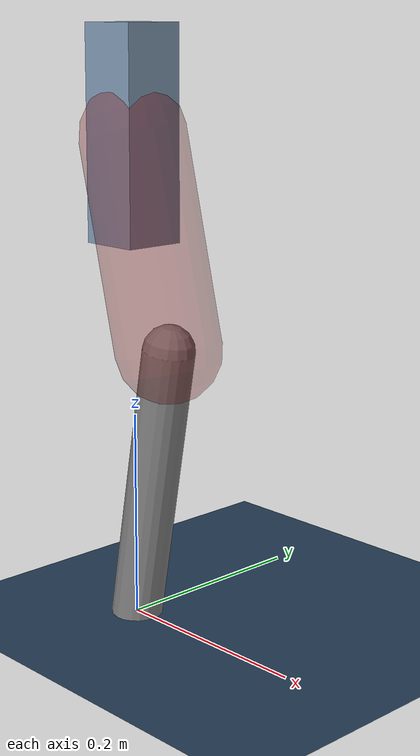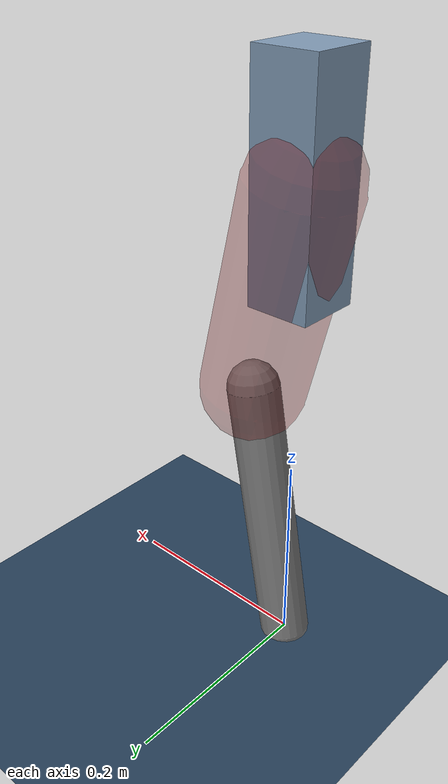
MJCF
<mujoco model="Hopper2D">
	<compiler inertiafromgeom="true" angle="radian" />
	<option timestep="0.001" integrator="implicit" cone="elliptic" solver="Newton" tolerance="1e-10" />

	<default>
		<geom contype="1" conaffinity="1" condim="3" friction="2 0.005 0.0001" solref="0.005 1" />
		<joint limited="true" damping="0.1" />
	</default>

	<asset>
		<texture name="skybox" type="skybox" builtin="gradient" rgb1=".4 .6 .8" rgb2="0 0 0" width="800" height="800" />
		<texture name="grid" type="2d" builtin="checker" rgb1=".1 .2 .3" rgb2=".2 .3 .4" width="300" height="300" mark="edge" markrgb=".2 .3 .4" />
		<material name="ground" texture="grid" texrepeat="1 1" texuniform="true" reflectance="0.1" />
		<material name="leg" rgba="0.5 0.6 0.7 1" />
	</asset>

	<worldbody>

		<geom name="floor" type="plane" size="5 5 0.25" material="ground" />

		<light directional="false" diffuse="0.8 0.8 0.8" specular="0.3 0.3 0.3" pos="0 0 2" dir="0 0 -1" />
		<light mode="targetbodycom" target="base" directional="false" diffuse="0.8 0.8 0.8" specular="0.3 0.3 0.3" pos="0 0 2" dir="0 0 -1" />

		<camera name="fixed" pos="0 -2 1" xyaxes="1 0 0 0 0 1" />
		<camera name="tracking" mode="trackcom" pos="0 -3 1" />

		<body name="root" pos="0 0 0.46638574079716755">
			<joint name="slide_x" type="slide" axis="1 0 0" range="-100 100" />
			<joint name="slide_z" type="slide" axis="0 0 1" range="0 10" />

			<body name="base" pos="0 0 0">
				<geom name="torso" type="box" size="0.03 0.03 0.1" mass="3.088" material="leg" />

				<body name="link1" pos="0 0 0" euler="0 1.3298672535327316 0">
					<joint type="hinge" axis="0 -1 0" pos="0 0 0" name="hinge1" limited="true" range="-3.14 3.14" stiffness="0" damping="0.1" />
					<geom name="thigh" type="capsule" fromto="0 0 0 0.20083962884179274 0 0" size="0.05" rgba="0.5 0 0 0.3" mass="0.7316990721044818" />

					<body name="link2" pos="0.20083962884179274 0 0" euler="0 0.4157319525330064 0">
						<joint type="hinge" axis="0 -1 0" pos="0 0 0" name="hinge2" limited="true" range="-3.14 3.14" stiffness="0" damping="0.1" />
						<geom name="shank" type="capsule" fromto="0 0 0 0.2755461119553748 0 0" size="0.025" mass="0.4634915007598373" />

					</body>
				</body>
			</body>
		</body>
	</worldbody>

	<actuator>
		<motor name="torque1" joint="hinge1" ctrlrange="-79.21917070639182 79.21917070639182" ctrllimited="true" gear="1" />
		<motor name="torque2" joint="hinge2" ctrlrange="-204.43436117328912 204.43436117328912" ctrllimited="true" gear="1" />
	</actuator>
</mujoco>
